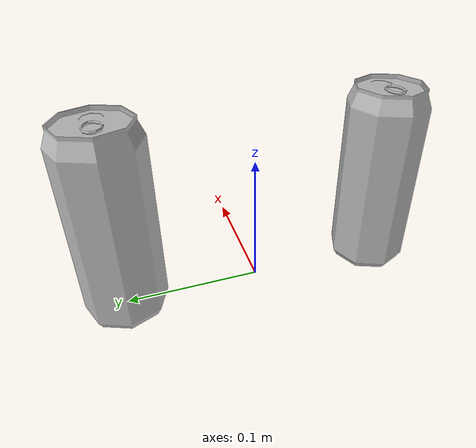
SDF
<?xml version="1.0"?>
<sdf version="1.8">

  <world name="world_demo">

    <physics name="1ms" type="ignored">
      <max_step_size>0.001</max_step_size>
      <real_time_factor>1.0</real_time_factor>
    </physics>

    <!-- Plugins -->
    <plugin
      filename="gz-sim-physics-system"
      name="gz::sim::systems::Physics">
    </plugin>
    <plugin
      filename="gz-sim-user-commands-system"
      name="gz::sim::systems::UserCommands">
    </plugin>
    <plugin
      filename="gz-sim-scene-broadcaster-system"
      name="gz::sim::systems::SceneBroadcaster">
    </plugin>

    <!-- GUI && 3D -->
    <gui fullscreen="0">

      <!-- 3D scene -->
      <plugin filename="MinimalScene" name="3D View">
        <gz-gui>
          <title>3D View</title>
          <property type="bool" key="showTitleBar">false</property>
          <property type="string" key="state">docked</property>
        </gz-gui>
        <engine>ogre2</engine>
        <scene>scene</scene>
        <ambient_light>0.4 0.4 0.4</ambient_light>
        <background_color>0.8 0.8 0.8</background_color>
        <camera_pose>-0.7 0 0.5 0 0.5 0</camera_pose>
        <camera_clip>
          <near>0.25</near>
          <far>25000</far>
        </camera_clip>
      </plugin>

      <plugin filename="GzSceneManager" name="Scene Manager">
        <gz-gui>
          <property key="resizable" type="bool">false</property>
          <property key="width" type="double">5</property>
          <property key="height" type="double">5</property>
          <property key="state" type="string">floating</property>
          <property key="showTitleBar" type="bool">false</property>
        </gz-gui>
      </plugin>

      <!-- World control -->
      <plugin filename="WorldControl" name="World control">
        <gz-gui>
          <title>World control</title>
          <property type="bool" key="showTitleBar">false</property>
          <property type="bool" key="resizable">false</property>
          <property type="double" key="height">72</property>
          <property type="double" key="width">121</property>
          <property type="double" key="z">1</property>
          <property type="string" key="state">floating</property>
          <anchors target="3D View">
            <line own="left" target="left"/>
            <line own="bottom" target="bottom"/>
          </anchors>
        </gz-gui>
        <play_pause>true</play_pause>
        <step>true</step>
        <start_paused>true</start_paused>
        <service>/world/world_demo/control</service>
        <stats_topic>/world/world_demo/stats</stats_topic>
      </plugin>

      <!-- World statistics -->
      <plugin filename="WorldStats" name="World stats">
        <gz-gui>
          <title>World stats</title>
          <property type="bool" key="showTitleBar">false</property>
          <property type="bool" key="resizable">false</property>
          <property type="double" key="height">110</property>
          <property type="double" key="width">290</property>
          <property type="double" key="z">1</property>
          <property type="string" key="state">floating</property>
          <anchors target="3D View">
            <line own="right" target="right"/>
            <line own="bottom" target="bottom"/>
          </anchors>
        </gz-gui>
        <sim_time>true</sim_time>
        <real_time>true</real_time>
        <real_time_factor>true</real_time_factor>
        <iterations>true</iterations>
        <topic>/world/world_demo/stats</topic>
      </plugin>

      <!-- Entity Tree Plugin -->
      <plugin
        filename="EntityTree"
        name="Entity tree">
      </plugin>

    </gui>

    <!-- Light -->
    <light type="directional" name="sun">
      <cast_shadows>true</cast_shadows>
      <pose>0 0 10 0 0 0</pose>
      <diffuse>0.8 0.8 0.8 1</diffuse>
      <specular>0.2 0.2 0.2 1</specular>
      <attenuation>
        <range>1000</range>
        <constant>0.9</constant>
        <linear>0.01</linear>
        <quadratic>0.001</quadratic>
      </attenuation>
      <direction>-0.5 0.1 -0.9</direction>
    </light>

    <!-- World Objects -->
    <include>
      <name>Coke0</name>
      <pose>0 0.1 0 0 0 0</pose>
      <uri>https://fuel.gazebosim.org/1.0/OpenRobotics/models/Coke</uri>
    </include>
    <include>
      <name>Coke1</name>
      <pose>0 -0.1 0 0 0 0</pose>
      <uri>https://fuel.gazebosim.org/1.0/OpenRobotics/models/Coke</uri>
    </include>

  </world>
</sdf>

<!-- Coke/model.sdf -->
<sdf version="1.6">
  <model name='Coke'>
    <static>true</static>
    <link name="body">
      <pose>0 0 0 0 0 0</pose>

        <visual name="visual">
          <geometry>
            <mesh><uri>model://Coke/meshes/coke.obj</uri></mesh>
          </geometry>
        </visual>

        <collision name="collision">
          <geometry>
            <mesh><uri>model://Coke/meshes/coke.obj</uri></mesh>
          </geometry>
        </collision>

        <!-- TODO: Replace with accurate values of mass and inertia -->
        <inertial>
          <mass>1.0</mass>
          <inertia>
            <ixx>0.003366666666666667</ixx>
            <iyy>0.0008666666666666667</iyy>
            <izz>0.0041666666666666675</izz>
          </inertia>
        </inertial>

    </link>

  </model>
</sdf>
